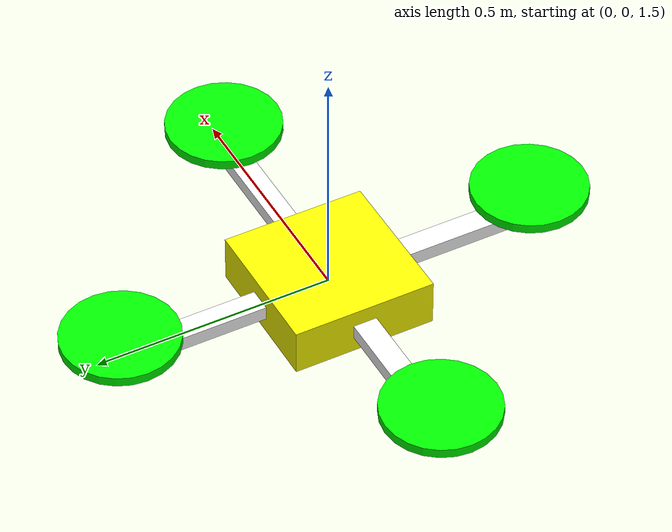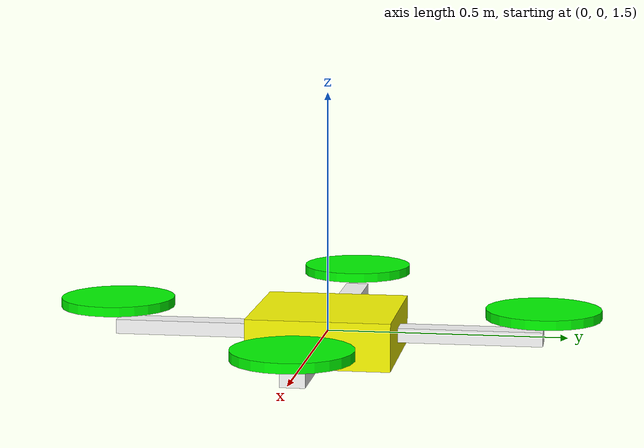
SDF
<?xml version="1.0" ?>
<sdf version="1.6">
  <model name="simple_robot">
    <pose>0 0 1.5 0 0 0</pose>
    <link name="base_link">

      <!-- Main body - yellow -->
      <visual name="body_visual">
        <geometry><box><size>0.3 0.3 0.1</size></box></geometry>
        <material><ambient>1 1 0 1</ambient><diffuse>1 1 0 1</diffuse></material>
      </visual>
      <collision name="body_collision">
        <geometry><box><size>0.3 0.3 0.1</size></box></geometry>
      </collision>

      <!-- Arm Front - white -->
      <visual name="arm1">
        <pose>0.3 0 0 0 0 0</pose>
        <geometry><box><size>0.3 0.05 0.03</size></box></geometry>
        <material><ambient>1 1 1 1</ambient><diffuse>1 1 1 1</diffuse></material>
      </visual>

      <!-- Arm Back - white -->
      <visual name="arm2">
        <pose>-0.3 0 0 0 0 0</pose>
        <geometry><box><size>0.3 0.05 0.03</size></box></geometry>
        <material><ambient>1 1 1 1</ambient><diffuse>1 1 1 1</diffuse></material>
      </visual>

      <!-- Arm Left - white -->
      <visual name="arm3">
        <pose>0 0.3 0 0 0 0</pose>
        <geometry><box><size>0.05 0.3 0.03</size></box></geometry>
        <material><ambient>1 1 1 1</ambient><diffuse>1 1 1 1</diffuse></material>
      </visual>

      <!-- Arm Right - white -->
      <visual name="arm4">
        <pose>0 -0.3 0 0 0 0</pose>
        <geometry><box><size>0.05 0.3 0.03</size></box></geometry>
        <material><ambient>1 1 1 1</ambient><diffuse>1 1 1 1</diffuse></material>
      </visual>

      <!-- Propeller Front - green -->
      <visual name="prop1">
        <pose>0.45 0 0.05 0 0 0</pose>
        <geometry><cylinder><radius>0.12</radius><length>0.02</length></cylinder></geometry>
        <material><ambient>0 1 0 1</ambient><diffuse>0 1 0 1</diffuse></material>
      </visual>

      <!-- Propeller Back - green -->
      <visual name="prop2">
        <pose>-0.45 0 0.05 0 0 0</pose>
        <geometry><cylinder><radius>0.12</radius><length>0.02</length></cylinder></geometry>
        <material><ambient>0 1 0 1</ambient><diffuse>0 1 0 1</diffuse></material>
      </visual>

      <!-- Propeller Left - green -->
      <visual name="prop3">
        <pose>0 0.45 0.05 0 0 0</pose>
        <geometry><cylinder><radius>0.12</radius><length>0.02</length></cylinder></geometry>
        <material><ambient>0 1 0 1</ambient><diffuse>0 1 0 1</diffuse></material>
      </visual>

      <!-- Propeller Right - green -->
      <visual name="prop4">
        <pose>0 -0.45 0.05 0 0 0</pose>
        <geometry><cylinder><radius>0.12</radius><length>0.02</length></cylinder></geometry>
        <material><ambient>0 1 0 1</ambient><diffuse>0 1 0 1</diffuse></material>
      </visual>

      <!-- Camera - forward slightly down -->
      <sensor name="camera" type="camera">
        <pose>0.15 0 -0.05 0 0.3 0</pose>
        <camera>
          <horizontal_fov>1.5</horizontal_fov>
          <image>
            <width>320</width>
            <height>240</height>
            <format>R8G8B8</format>
          </image>
          <clip><near>0.1</near><far>100</far></clip>
        </camera>
        <always_on>1</always_on>
        <update_rate>30</update_rate>
        <visualize>true</visualize>
        <topic>/camera/image_raw</topic>
      </sensor>

    </link>
  </model>
</sdf>
